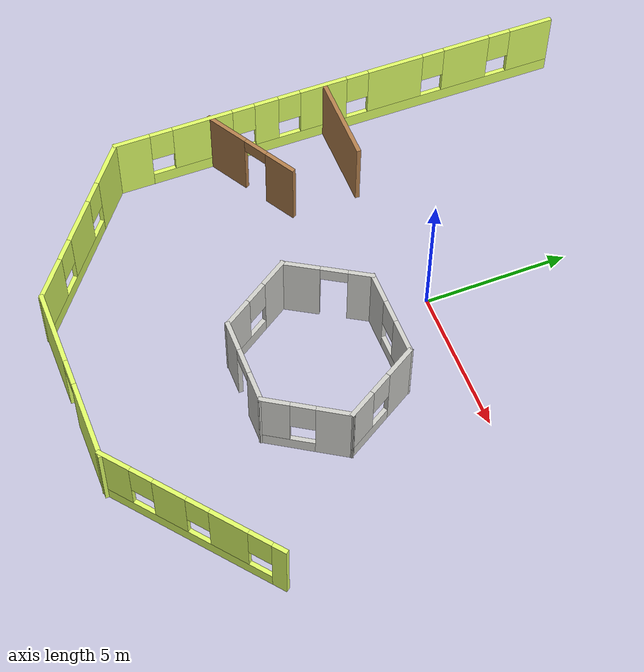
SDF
<sdf version="1.6">
 <model name="myBuilding">
  <pose>-0.015237 -2.0117 0 0 -0 0</pose>
  <link name="Wall_1">
   <pose>-7.98476 2.0117 0 0 -0 1.5708</pose>
   <visual name="Wall_1_Visual_0">
    <pose>-7.43035 0 1.25 0 -0 0</pose>
    <geometry><box><size>1.2893 0.15 2.5</size></box></geometry>
    <material>
     <script><uri>file://media/materials/scripts/gazebo.material</uri><name>Gazebo/Grey</name></script>
     <ambient>0.870588 1 0.4 1</ambient>
    </material>
    <meta><layer>0</layer></meta>
   </visual>
   <collision name="Wall_1_Collision_0">
    <geometry><box><size>1.2893 0.15 2.5</size></box></geometry>
    <pose>-7.43035 0 1.25 0 -0 0</pose>
   </collision>
   <visual name="Wall_1_Visual_1">
    <pose>0.64465 0 0.25 0 -0 0</pose>
    <geometry><box><size>14.8607 0.15 0.5</size></box></geometry>
    <material>
     <script><uri>file://media/materials/scripts/gazebo.material</uri><name>Gazebo/Grey</name></script>
     <ambient>0.870588 1 0.4 1</ambient>
    </material>
    <meta><layer>0</layer></meta>
   </visual>
   <collision name="Wall_1_Collision_1">
    <geometry><box><size>14.8607 0.15 0.5</size></box></geometry>
    <pose>0.64465 0 0.25 0 -0 0</pose>
   </collision>
   <visual name="Wall_1_Visual_2">
    <pose>-4.91735 0 1.5 0 -0 0</pose>
    <geometry><box><size>2.13671 0.15 2</size></box></geometry>
    <material>
     <script><uri>file://media/materials/scripts/gazebo.material</uri><name>Gazebo/Grey</name></script>
     <ambient>0.870588 1 0.4 1</ambient>
    </material>
    <meta><layer>0</layer></meta>
   </visual>
   <collision name="Wall_1_Collision_2">
    <geometry><box><size>2.13671 0.15 2</size></box></geometry>
    <pose>-4.91735 0 1.5 0 -0 0</pose>
   </collision>
   <visual name="Wall_1_Visual_3">
    <pose>-2.61971 0 1.5 0 -0 0</pose>
    <geometry><box><size>0.858577 0.15 2</size></box></geometry>
    <material>
     <script><uri>file://media/materials/scripts/gazebo.material</uri><name>Gazebo/Grey</name></script>
     <ambient>0.870588 1 0.4 1</ambient>
    </material>
    <meta><layer>0</layer></meta>
   </visual>
   <collision name="Wall_1_Collision_3">
    <geometry><box><size>0.858577 0.15 2</size></box></geometry>
    <pose>-2.61971 0 1.5 0 -0 0</pose>
   </collision>
   <visual name="Wall_1_Visual_4">
    <pose>-0.533107 0 1.5 0 -0 0</pose>
    <geometry><box><size>1.71462 0.15 2</size></box></geometry>
    <material>
     <script><uri>file://media/materials/scripts/gazebo.material</uri><name>Gazebo/Grey</name></script>
     <ambient>0.870588 1 0.4 1</ambient>
    </material>
    <meta><layer>0</layer></meta>
   </visual>
   <collision name="Wall_1_Collision_4">
    <geometry><box><size>1.71462 0.15 2</size></box></geometry>
    <pose>-0.533107 0 1.5 0 -0 0</pose>
   </collision>
   <visual name="Wall_1_Visual_5">
    <pose>2.14202 0 1.5 0 -0 0</pose>
    <geometry><box><size>2.03563 0.15 2</size></box></geometry>
    <material>
     <script><uri>file://media/materials/scripts/gazebo.material</uri><name>Gazebo/Grey</name></script>
     <ambient>0.870588 1 0.4 1</ambient>
    </material>
    <meta><layer>0</layer></meta>
   </visual>
   <collision name="Wall_1_Collision_5">
    <geometry><box><size>2.03563 0.15 2</size></box></geometry>
    <pose>2.14202 0 1.5 0 -0 0</pose>
   </collision>
   <visual name="Wall_1_Visual_6">
    <pose>4.81656 0 1.5 0 -0 0</pose>
    <geometry><box><size>1.71345 0.15 2</size></box></geometry>
    <material>
     <script><uri>file://media/materials/scripts/gazebo.material</uri><name>Gazebo/Grey</name></script>
     <ambient>0.870588 1 0.4 1</ambient>
    </material>
    <meta><layer>0</layer></meta>
   </visual>
   <collision name="Wall_1_Collision_6">
    <geometry><box><size>1.71345 0.15 2</size></box></geometry>
    <pose>4.81656 0 1.5 0 -0 0</pose>
   </collision>
   <visual name="Wall_1_Visual_7">
    <pose>7.27414 0 1.5 0 -0 0</pose>
    <geometry><box><size>1.60171 0.15 2</size></box></geometry>
    <material>
     <script><uri>file://media/materials/scripts/gazebo.material</uri><name>Gazebo/Grey</name></script>
     <ambient>0.870588 1 0.4 1</ambient>
    </material>
    <meta><layer>0</layer></meta>
   </visual>
   <collision name="Wall_1_Collision_7">
    <geometry><box><size>1.60171 0.15 2</size></box></geometry>
    <pose>7.27414 0 1.5 0 -0 0</pose>
   </collision>
   <visual name="Wall_1_Visual_8">
    <pose>-6.3857 0 1.9 0 -0 0</pose>
    <geometry><box><size>0.8 0.15 1.2</size></box></geometry>
    <material>
     <script><uri>file://media/materials/scripts/gazebo.material</uri><name>Gazebo/Grey</name></script>
     <ambient>0.870588 1 0.4 1</ambient>
    </material>
    <meta><layer>0</layer></meta>
   </visual>
   <collision name="Wall_1_Collision_8">
    <geometry><box><size>0.8 0.15 1.2</size></box></geometry>
    <pose>-6.3857 0 1.9 0 -0 0</pose>
   </collision>
   <visual name="Wall_1_Visual_9">
    <pose>-3.44899 0 1.9 0 -0 0</pose>
    <geometry><box><size>0.8 0.15 1.2</size></box></geometry>
    <material>
     <script><uri>file://media/materials/scripts/gazebo.material</uri><name>Gazebo/Grey</name></script>
     <ambient>0.870588 1 0.4 1</ambient>
    </material>
    <meta><layer>0</layer></meta>
   </visual>
   <collision name="Wall_1_Collision_9">
    <geometry><box><size>0.8 0.15 1.2</size></box></geometry>
    <pose>-3.44899 0 1.9 0 -0 0</pose>
   </collision>
   <visual name="Wall_1_Visual_10">
    <pose>-1.79042 0 1.9 0 -0 0</pose>
    <geometry><box><size>0.8 0.15 1.2</size></box></geometry>
    <material>
     <script><uri>file://media/materials/scripts/gazebo.material</uri><name>Gazebo/Grey</name></script>
     <ambient>0.870588 1 0.4 1</ambient>
    </material>
    <meta><layer>0</layer></meta>
   </visual>
   <collision name="Wall_1_Collision_10">
    <geometry><box><size>0.8 0.15 1.2</size></box></geometry>
    <pose>-1.79042 0 1.9 0 -0 0</pose>
   </collision>
   <visual name="Wall_1_Visual_11">
    <pose>0.724202 0 1.9 0 -0 0</pose>
    <geometry><box><size>0.8 0.15 1.2</size></box></geometry>
    <material>
     <script><uri>file://media/materials/scripts/gazebo.material</uri><name>Gazebo/Grey</name></script>
     <ambient>0.870588 1 0.4 1</ambient>
    </material>
    <meta><layer>0</layer></meta>
   </visual>
   <collision name="Wall_1_Collision_11">
    <geometry><box><size>0.8 0.15 1.2</size></box></geometry>
    <pose>0.724202 0 1.9 0 -0 0</pose>
   </collision>
   <visual name="Wall_1_Visual_12">
    <pose>3.55983 0 1.9 0 -0 0</pose>
    <geometry><box><size>0.8 0.15 1.2</size></box></geometry>
    <material>
     <script><uri>file://media/materials/scripts/gazebo.material</uri><name>Gazebo/Grey</name></script>
     <ambient>0.870588 1 0.4 1</ambient>
    </material>
    <meta><layer>0</layer></meta>
   </visual>
   <collision name="Wall_1_Collision_12">
    <geometry><box><size>0.8 0.15 1.2</size></box></geometry>
    <pose>3.55983 0 1.9 0 -0 0</pose>
   </collision>
   <visual name="Wall_1_Visual_13">
    <pose>6.07329 0 1.9 0 -0 0</pose>
    <geometry><box><size>0.8 0.15 1.2</size></box></geometry>
    <material>
     <script><uri>file://media/materials/scripts/gazebo.material</uri><name>Gazebo/Grey</name></script>
     <ambient>0.870588 1 0.4 1</ambient>
    </material>
    <meta><layer>0</layer></meta>
   </visual>
   <collision name="Wall_1_Collision_13">
    <geometry><box><size>0.8 0.15 1.2</size></box></geometry>
    <pose>6.07329 0 1.9 0 -0 0</pose>
   </collision>
  </link>
  <link name="Wall_10">
   <pose>5.51524 -7.9883 0 0 0 -2.46685</pose>
   <visual name="Wall_10_Visual_0">
    <pose>-3.02719 0 1.25 0 -0 0</pose>
    <geometry><box><size>0.498745 0.15 2.5</size></box></geometry>
    <material>
     <script><uri>file://media/materials/scripts/gazebo.material</uri><name>Gazebo/Grey</name></script>
     <ambient>0.870588 1 0.4 1</ambient>
    </material>
    <meta><layer>0</layer></meta>
   </visual>
   <collision name="Wall_10_Collision_0">
    <geometry><box><size>0.498745 0.15 2.5</size></box></geometry>
    <pose>-3.02719 0 1.25 0 -0 0</pose>
   </collision>
   <visual name="Wall_10_Visual_1">
    <pose>0.249372 0 0.25 0 -0 0</pose>
    <geometry><box><size>6.05438 0.15 0.5</size></box></geometry>
    <material>
     <script><uri>file://media/materials/scripts/gazebo.material</uri><name>Gazebo/Grey</name></script>
     <ambient>0.870588 1 0.4 1</ambient>
    </material>
    <meta><layer>0</layer></meta>
   </visual>
   <collision name="Wall_10_Collision_1">
    <geometry><box><size>6.05438 0.15 0.5</size></box></geometry>
    <pose>0.249372 0 0.25 0 -0 0</pose>
   </collision>
   <visual name="Wall_10_Visual_2">
    <pose>-1.31246 0 1.5 0 -0 0</pose>
    <geometry><box><size>1.33072 0.15 2</size></box></geometry>
    <material>
     <script><uri>file://media/materials/scripts/gazebo.material</uri><name>Gazebo/Grey</name></script>
     <ambient>0.870588 1 0.4 1</ambient>
    </material>
    <meta><layer>0</layer></meta>
   </visual>
   <collision name="Wall_10_Collision_2">
    <geometry><box><size>1.33072 0.15 2</size></box></geometry>
    <pose>-1.31246 0 1.5 0 -0 0</pose>
   </collision>
   <visual name="Wall_10_Visual_3">
    <pose>0.732264 0 1.5 0 -0 0</pose>
    <geometry><box><size>1.15873 0.15 2</size></box></geometry>
    <material>
     <script><uri>file://media/materials/scripts/gazebo.material</uri><name>Gazebo/Grey</name></script>
     <ambient>0.870588 1 0.4 1</ambient>
    </material>
    <meta><layer>0</layer></meta>
   </visual>
   <collision name="Wall_10_Collision_3">
    <geometry><box><size>1.15873 0.15 2</size></box></geometry>
    <pose>0.732264 0 1.5 0 -0 0</pose>
   </collision>
   <visual name="Wall_10_Visual_4">
    <pose>2.6941 0 1.5 0 -0 0</pose>
    <geometry><box><size>1.16493 0.15 2</size></box></geometry>
    <material>
     <script><uri>file://media/materials/scripts/gazebo.material</uri><name>Gazebo/Grey</name></script>
     <ambient>0.870588 1 0.4 1</ambient>
    </material>
    <meta><layer>0</layer></meta>
   </visual>
   <collision name="Wall_10_Collision_4">
    <geometry><box><size>1.16493 0.15 2</size></box></geometry>
    <pose>2.6941 0 1.5 0 -0 0</pose>
   </collision>
   <visual name="Wall_10_Visual_5">
    <pose>-2.37782 0 1.9 0 -0 0</pose>
    <geometry><box><size>0.8 0.15 1.2</size></box></geometry>
    <material>
     <script><uri>file://media/materials/scripts/gazebo.material</uri><name>Gazebo/Grey</name></script>
     <ambient>0.870588 1 0.4 1</ambient>
    </material>
    <meta><layer>0</layer></meta>
   </visual>
   <collision name="Wall_10_Collision_5">
    <geometry><box><size>0.8 0.15 1.2</size></box></geometry>
    <pose>-2.37782 0 1.9 0 -0 0</pose>
   </collision>
   <visual name="Wall_10_Visual_6">
    <pose>-0.247101 0 1.9 0 -0 0</pose>
    <geometry><box><size>0.8 0.15 1.2</size></box></geometry>
    <material>
     <script><uri>file://media/materials/scripts/gazebo.material</uri><name>Gazebo/Grey</name></script>
     <ambient>0.870588 1 0.4 1</ambient>
    </material>
    <meta><layer>0</layer></meta>
   </visual>
   <collision name="Wall_10_Collision_6">
    <geometry><box><size>0.8 0.15 1.2</size></box></geometry>
    <pose>-0.247101 0 1.9 0 -0 0</pose>
   </collision>
   <visual name="Wall_10_Visual_7">
    <pose>1.71163 0 1.9 0 -0 0</pose>
    <geometry><box><size>0.8 0.15 1.2</size></box></geometry>
    <material>
     <script><uri>file://media/materials/scripts/gazebo.material</uri><name>Gazebo/Grey</name></script>
     <ambient>0.870588 1 0.4 1</ambient>
    </material>
    <meta><layer>0</layer></meta>
   </visual>
   <collision name="Wall_10_Collision_7">
    <geometry><box><size>0.8 0.15 1.2</size></box></geometry>
    <pose>1.71163 0 1.9 0 -0 0</pose>
   </collision>
  </link>
  <link name="Wall_12">
   <pose>0.065237 -9.9883 0 0 -0 0</pose>
   <visual name="Wall_12_Visual_0">
    <pose>-1.8125 0 1.25 0 -0 0</pose>
    <geometry><box><size>2.625 0.15 2.5</size></box></geometry>
    <material>
     <script><uri>file://media/materials/scripts/gazebo.material</uri><name>Gazebo/Grey</name></script>
     <ambient>0.870588 1 0.4 1</ambient>
    </material>
    <meta><layer>0</layer></meta>
   </visual>
   <collision name="Wall_12_Collision_0">
    <geometry><box><size>2.625 0.15 2.5</size></box></geometry>
    <pose>-1.8125 0 1.25 0 -0 0</pose>
   </collision>
   <visual name="Wall_12_Visual_1">
    <pose>1.7625 0 1.25 0 -0 0</pose>
    <geometry><box><size>2.725 0.15 2.5</size></box></geometry>
    <material>
     <script><uri>file://media/materials/scripts/gazebo.material</uri><name>Gazebo/Grey</name></script>
     <ambient>0.870588 1 0.4 1</ambient>
    </material>
    <meta><layer>0</layer></meta>
   </visual>
   <collision name="Wall_12_Collision_1">
    <geometry><box><size>2.725 0.15 2.5</size></box></geometry>
    <pose>1.7625 0 1.25 0 -0 0</pose>
   </collision>
   <visual name="Wall_12_Visual_2">
    <pose>-0.05 0 2.25 0 -0 0</pose>
    <geometry><box><size>0.9 0.15 0.5</size></box></geometry>
    <material>
     <script><uri>file://media/materials/scripts/gazebo.material</uri><name>Gazebo/Grey</name></script>
     <ambient>0.870588 1 0.4 1</ambient>
    </material>
    <meta><layer>0</layer></meta>
   </visual>
   <collision name="Wall_12_Collision_2">
    <geometry><box><size>0.9 0.15 0.5</size></box></geometry>
    <pose>-0.05 0 2.25 0 -0 0</pose>
   </collision>
  </link>
  <link name="Wall_22">
   <pose>-6.45936 -1.73129 0 0 0 -2.61799</pose>
   <visual name="Wall_22_Visual_0">
    <pose>-1.28514 0 1.25 0 -0 0</pose>
    <geometry><box><size>1.17972 0.15 2.5</size></box></geometry>
    <material>
     <script><uri>file://media/materials/scripts/gazebo.material</uri><name>Gazebo/Wood</name></script>
     <ambient>1 0.976471 0.866667 1</ambient>
    </material>
    <meta><layer>0</layer></meta>
   </visual>
   <collision name="Wall_22_Collision_0">
    <geometry><box><size>1.17972 0.15 2.5</size></box></geometry>
    <pose>-1.28514 0 1.25 0 -0 0</pose>
   </collision>
   <visual name="Wall_22_Visual_1">
    <pose>1.03986 0 1.25 0 -0 0</pose>
    <geometry><box><size>1.67028 0.15 2.5</size></box></geometry>
    <material>
     <script><uri>file://media/materials/scripts/gazebo.material</uri><name>Gazebo/Wood</name></script>
     <ambient>1 0.976471 0.866667 1</ambient>
    </material>
    <meta><layer>0</layer></meta>
   </visual>
   <collision name="Wall_22_Collision_1">
    <geometry><box><size>1.67028 0.15 2.5</size></box></geometry>
    <pose>1.03986 0 1.25 0 -0 0</pose>
   </collision>
   <visual name="Wall_22_Visual_2">
    <pose>-0.24528 0 2.25 0 -0 0</pose>
    <geometry><box><size>0.9 0.15 0.5</size></box></geometry>
    <material>
     <script><uri>file://media/materials/scripts/gazebo.material</uri><name>Gazebo/Wood</name></script>
     <ambient>1 0.976471 0.866667 1</ambient>
    </material>
    <meta><layer>0</layer></meta>
   </visual>
   <collision name="Wall_22_Collision_2">
    <geometry><box><size>0.9 0.15 0.5</size></box></geometry>
    <pose>-0.24528 0 2.25 0 -0 0</pose>
   </collision>
  </link>
  <link name="Wall_35">
   <collision name="Wall_35_Collision">
    <geometry><box><size>3.22684 0.15 2.5</size></box></geometry>
    <pose>0 0 1.25 0 -0 0</pose>
   </collision>
   <visual name="Wall_35_Visual">
    <pose>0 0 1.25 0 -0 0</pose>
    <geometry><box><size>3.22684 0.15 2.5</size></box></geometry>
    <material>
     <script><uri>file://media/materials/scripts/gazebo.material</uri><name>Gazebo/Wood</name></script>
     <ambient>1 0.976471 0.866667 1</ambient>
    </material>
    <meta><layer>0</layer></meta>
   </visual>
   <pose>-6.44626 1.5187 0 0 -0 0</pose>
  </link>
  <link name="Wall_37">
   <pose>1.51524 0.011703 0 0 -0 0</pose>
   <visual name="Wall_37_Visual_0">
    <pose>-1.00885 0 1.25 0 -0 0</pose>
    <geometry><box><size>1.1323 0.15 2.5</size></box></geometry>
    <material>
     <script><uri>file://media/materials/scripts/gazebo.material</uri><name>Gazebo/CeilingTiled</name></script>
     <ambient>0.662745 0.929412 1 1</ambient>
    </material>
    <meta><layer>0</layer></meta>
   </visual>
   <collision name="Wall_37_Collision_0">
    <geometry><box><size>1.1323 0.15 2.5</size></box></geometry>
    <pose>-1.00885 0 1.25 0 -0 0</pose>
   </collision>
   <visual name="Wall_37_Visual_1">
    <pose>0.566152 0 0.25 0 -0 0</pose>
    <geometry><box><size>2.0177 0.15 0.5</size></box></geometry>
    <material>
     <script><uri>file://media/materials/scripts/gazebo.material</uri><name>Gazebo/CeilingTiled</name></script>
     <ambient>0.662745 0.929412 1 1</ambient>
    </material>
    <meta><layer>0</layer></meta>
   </visual>
   <collision name="Wall_37_Collision_1">
    <geometry><box><size>2.0177 0.15 0.5</size></box></geometry>
    <pose>0.566152 0 0.25 0 -0 0</pose>
   </collision>
   <visual name="Wall_37_Visual_2">
    <pose>0.966152 0 1.5 0 -0 0</pose>
    <geometry><box><size>1.2177 0.15 2</size></box></geometry>
    <material>
     <script><uri>file://media/materials/scripts/gazebo.material</uri><name>Gazebo/CeilingTiled</name></script>
     <ambient>0.662745 0.929412 1 1</ambient>
    </material>
    <meta><layer>0</layer></meta>
   </visual>
   <collision name="Wall_37_Collision_2">
    <geometry><box><size>1.2177 0.15 2</size></box></geometry>
    <pose>0.966152 0 1.5 0 -0 0</pose>
   </collision>
   <visual name="Wall_37_Visual_3">
    <pose>-0.042697 0 1.9 0 -0 0</pose>
    <geometry><box><size>0.8 0.15 1.2</size></box></geometry>
    <material>
     <script><uri>file://media/materials/scripts/gazebo.material</uri><name>Gazebo/CeilingTiled</name></script>
     <ambient>0.662745 0.929412 1 1</ambient>
    </material>
    <meta><layer>0</layer></meta>
   </visual>
   <collision name="Wall_37_Collision_3">
    <geometry><box><size>0.8 0.15 1.2</size></box></geometry>
    <pose>-0.042697 0 1.9 0 -0 0</pose>
   </collision>
  </link>
  <link name="Wall_41">
   <pose>1.55274 -4.8883 0 0 -0 3.14159</pose>
   <visual name="Wall_41_Visual_0">
    <pose>-0.993879 0 1.25 0 -0 0</pose>
    <geometry><box><size>1.08724 0.15 2.5</size></box></geometry>
    <material>
     <script><uri>file://media/materials/scripts/gazebo.material</uri><name>Gazebo/CeilingTiled</name></script>
     <ambient>0.662745 0.929412 1 1</ambient>
    </material>
    <meta><layer>0</layer></meta>
   </visual>
   <collision name="Wall_41_Collision_0">
    <geometry><box><size>1.08724 0.15 2.5</size></box></geometry>
    <pose>-0.993879 0 1.25 0 -0 0</pose>
   </collision>
   <visual name="Wall_41_Visual_1">
    <pose>0.993621 0 1.25 0 -0 0</pose>
    <geometry><box><size>1.08776 0.15 2.5</size></box></geometry>
    <material>
     <script><uri>file://media/materials/scripts/gazebo.material</uri><name>Gazebo/CeilingTiled</name></script>
     <ambient>0.662745 0.929412 1 1</ambient>
    </material>
    <meta><layer>0</layer></meta>
   </visual>
   <collision name="Wall_41_Collision_1">
    <geometry><box><size>1.08776 0.15 2.5</size></box></geometry>
    <pose>0.993621 0 1.25 0 -0 0</pose>
   </collision>
   <visual name="Wall_41_Visual_2">
    <pose>-0.000257 0 2.25 0 -0 0</pose>
    <geometry><box><size>0.9 0.15 0.5</size></box></geometry>
    <material>
     <script><uri>file://media/materials/scripts/gazebo.material</uri><name>Gazebo/CeilingTiled</name></script>
     <ambient>0.662745 0.929412 1 1</ambient>
    </material>
    <meta><layer>0</layer></meta>
   </visual>
   <collision name="Wall_41_Collision_2">
    <geometry><box><size>0.9 0.15 0.5</size></box></geometry>
    <pose>-0.000257 0 2.25 0 -0 0</pose>
   </collision>
  </link>
  <link name="Wall_46">
   <pose>-0.734763 -1.2383 0 0 0 -2.11122</pose>
   <visual name="Wall_46_Visual_0">
    <pose>-1.10227 0 1.25 0 -0 0</pose>
    <geometry><box><size>0.860943 0.15 2.5</size></box></geometry>
    <material>
     <script><uri>file://media/materials/scripts/gazebo.material</uri><name>Gazebo/CeilingTiled</name></script>
     <ambient>0.662745 0.929412 1 1</ambient>
    </material>
    <meta><layer>0</layer></meta>
   </visual>
   <collision name="Wall_46_Collision_0">
    <geometry><box><size>0.860943 0.15 2.5</size></box></geometry>
    <pose>-1.10227 0 1.25 0 -0 0</pose>
   </collision>
   <visual name="Wall_46_Visual_1">
    <pose>0.880472 0 1.25 0 -0 0</pose>
    <geometry><box><size>1.30453 0.15 2.5</size></box></geometry>
    <material>
     <script><uri>file://media/materials/scripts/gazebo.material</uri><name>Gazebo/CeilingTiled</name></script>
     <ambient>0.662745 0.929412 1 1</ambient>
    </material>
    <meta><layer>0</layer></meta>
   </visual>
   <collision name="Wall_46_Collision_1">
    <geometry><box><size>1.30453 0.15 2.5</size></box></geometry>
    <pose>0.880472 0 1.25 0 -0 0</pose>
   </collision>
   <visual name="Wall_46_Visual_2">
    <pose>-0.221794 0 2.25 0 -0 0</pose>
    <geometry><box><size>0.9 0.15 0.5</size></box></geometry>
    <material>
     <script><uri>file://media/materials/scripts/gazebo.material</uri><name>Gazebo/CeilingTiled</name></script>
     <ambient>0.662745 0.929412 1 1</ambient>
    </material>
    <meta><layer>0</layer></meta>
   </visual>
   <collision name="Wall_46_Collision_2">
    <geometry><box><size>0.9 0.15 0.5</size></box></geometry>
    <pose>-0.221794 0 2.25 0 -0 0</pose>
   </collision>
  </link>
  <link name="Wall_47">
   <pose>-0.697263 -3.6883 0 0 0 -0.99004</pose>
   <visual name="Wall_47_Visual_0">
    <pose>-0.962388 0 1.25 0 -0 0</pose>
    <geometry><box><size>1.09587 0.15 2.5</size></box></geometry>
    <material>
     <script><uri>file://media/materials/scripts/gazebo.material</uri><name>Gazebo/CeilingTiled</name></script>
     <ambient>0.662745 0.929412 1 1</ambient>
    </material>
    <meta><layer>0</layer></meta>
   </visual>
   <collision name="Wall_47_Collision_0">
    <geometry><box><size>1.09587 0.15 2.5</size></box></geometry>
    <pose>-0.962388 0 1.25 0 -0 0</pose>
   </collision>
   <visual name="Wall_47_Visual_1">
    <pose>0.547936 0 0.25 0 -0 0</pose>
    <geometry><box><size>1.92478 0.15 0.5</size></box></geometry>
    <material>
     <script><uri>file://media/materials/scripts/gazebo.material</uri><name>Gazebo/CeilingTiled</name></script>
     <ambient>0.662745 0.929412 1 1</ambient>
    </material>
    <meta><layer>0</layer></meta>
   </visual>
   <collision name="Wall_47_Collision_1">
    <geometry><box><size>1.92478 0.15 0.5</size></box></geometry>
    <pose>0.547936 0 0.25 0 -0 0</pose>
   </collision>
   <visual name="Wall_47_Visual_2">
    <pose>0.947936 0 1.5 0 -0 0</pose>
    <geometry><box><size>1.12478 0.15 2</size></box></geometry>
    <material>
     <script><uri>file://media/materials/scripts/gazebo.material</uri><name>Gazebo/CeilingTiled</name></script>
     <ambient>0.662745 0.929412 1 1</ambient>
    </material>
    <meta><layer>0</layer></meta>
   </visual>
   <collision name="Wall_47_Collision_2">
    <geometry><box><size>1.12478 0.15 2</size></box></geometry>
    <pose>0.947936 0 1.5 0 -0 0</pose>
   </collision>
   <visual name="Wall_47_Visual_3">
    <pose>-0.014452 0 1.9 0 -0 0</pose>
    <geometry><box><size>0.8 0.15 1.2</size></box></geometry>
    <material>
     <script><uri>file://media/materials/scripts/gazebo.material</uri><name>Gazebo/CeilingTiled</name></script>
     <ambient>0.662745 0.929412 1 1</ambient>
    </material>
    <meta><layer>0</layer></meta>
   </visual>
   <collision name="Wall_47_Collision_3">
    <geometry><box><size>0.8 0.15 1.2</size></box></geometry>
    <pose>-0.014452 0 1.9 0 -0 0</pose>
   </collision>
  </link>
  <link name="Wall_49">
   <pose>3.76524 -1.2383 0 0 0 -1.03038</pose>
   <visual name="Wall_49_Visual_0">
    <pose>-0.922396 0 1.25 0 -0 0</pose>
    <geometry><box><size>1.22069 0.15 2.5</size></box></geometry>
    <material>
     <script><uri>file://media/materials/scripts/gazebo.material</uri><name>Gazebo/CeilingTiled</name></script>
     <ambient>0.662745 0.929412 1 1</ambient>
    </material>
    <meta><layer>0</layer></meta>
   </visual>
   <collision name="Wall_49_Collision_0">
    <geometry><box><size>1.22069 0.15 2.5</size></box></geometry>
    <pose>-0.922396 0 1.25 0 -0 0</pose>
   </collision>
   <visual name="Wall_49_Visual_1">
    <pose>0.610342 0 0.25 0 -0 0</pose>
    <geometry><box><size>1.84479 0.15 0.5</size></box></geometry>
    <material>
     <script><uri>file://media/materials/scripts/gazebo.material</uri><name>Gazebo/CeilingTiled</name></script>
     <ambient>0.662745 0.929412 1 1</ambient>
    </material>
    <meta><layer>0</layer></meta>
   </visual>
   <collision name="Wall_49_Collision_1">
    <geometry><box><size>1.84479 0.15 0.5</size></box></geometry>
    <pose>0.610342 0 0.25 0 -0 0</pose>
   </collision>
   <visual name="Wall_49_Visual_2">
    <pose>1.01034 0 1.5 0 -0 0</pose>
    <geometry><box><size>1.04479 0.15 2</size></box></geometry>
    <material>
     <script><uri>file://media/materials/scripts/gazebo.material</uri><name>Gazebo/CeilingTiled</name></script>
     <ambient>0.662745 0.929412 1 1</ambient>
    </material>
    <meta><layer>0</layer></meta>
   </visual>
   <collision name="Wall_49_Collision_2">
    <geometry><box><size>1.04479 0.15 2</size></box></geometry>
    <pose>1.01034 0 1.5 0 -0 0</pose>
   </collision>
   <visual name="Wall_49_Visual_3">
    <pose>0.087947 0 1.9 0 -0 0</pose>
    <geometry><box><size>0.8 0.15 1.2</size></box></geometry>
    <material>
     <script><uri>file://media/materials/scripts/gazebo.material</uri><name>Gazebo/CeilingTiled</name></script>
     <ambient>0.662745 0.929412 1 1</ambient>
    </material>
    <meta><layer>0</layer></meta>
   </visual>
   <collision name="Wall_49_Collision_3">
    <geometry><box><size>0.8 0.15 1.2</size></box></geometry>
    <pose>0.087947 0 1.9 0 -0 0</pose>
   </collision>
  </link>
  <link name="Wall_50">
   <pose>3.76524 -3.6883 0 0 0 -2.1294</pose>
   <visual name="Wall_50_Visual_0">
    <pose>-0.889397 0 1.25 0 -0 0</pose>
    <geometry><box><size>1.2014 0.15 2.5</size></box></geometry>
    <material>
     <script><uri>file://media/materials/scripts/gazebo.material</uri><name>Gazebo/CeilingTiled</name></script>
     <ambient>0.662745 0.929412 1 1</ambient>
    </material>
    <meta><layer>0</layer></meta>
   </visual>
   <collision name="Wall_50_Collision_0">
    <geometry><box><size>1.2014 0.15 2.5</size></box></geometry>
    <pose>-0.889397 0 1.25 0 -0 0</pose>
   </collision>
   <visual name="Wall_50_Visual_1">
    <pose>0.6007 0 0.25 0 -0 0</pose>
    <geometry><box><size>1.77879 0.15 0.5</size></box></geometry>
    <material>
     <script><uri>file://media/materials/scripts/gazebo.material</uri><name>Gazebo/CeilingTiled</name></script>
     <ambient>0.662745 0.929412 1 1</ambient>
    </material>
    <meta><layer>0</layer></meta>
   </visual>
   <collision name="Wall_50_Collision_1">
    <geometry><box><size>1.77879 0.15 0.5</size></box></geometry>
    <pose>0.6007 0 0.25 0 -0 0</pose>
   </collision>
   <visual name="Wall_50_Visual_2">
    <pose>1.0007 0 1.5 0 -0 0</pose>
    <geometry><box><size>0.978794 0.15 2</size></box></geometry>
    <material>
     <script><uri>file://media/materials/scripts/gazebo.material</uri><name>Gazebo/CeilingTiled</name></script>
     <ambient>0.662745 0.929412 1 1</ambient>
    </material>
    <meta><layer>0</layer></meta>
   </visual>
   <collision name="Wall_50_Collision_2">
    <geometry><box><size>0.978794 0.15 2</size></box></geometry>
    <pose>1.0007 0 1.5 0 -0 0</pose>
   </collision>
   <visual name="Wall_50_Visual_3">
    <pose>0.111303 0 1.9 0 -0 0</pose>
    <geometry><box><size>0.8 0.15 1.2</size></box></geometry>
    <material>
     <script><uri>file://media/materials/scripts/gazebo.material</uri><name>Gazebo/CeilingTiled</name></script>
     <ambient>0.662745 0.929412 1 1</ambient>
    </material>
    <meta><layer>0</layer></meta>
   </visual>
   <collision name="Wall_50_Collision_3">
    <geometry><box><size>0.8 0.15 1.2</size></box></geometry>
    <pose>0.111303 0 1.9 0 -0 0</pose>
   </collision>
  </link>
  <link name="Wall_8">
   <pose>-5.48476 -7.9883 0 0 0 -0.674741</pose>
   <visual name="Wall_8_Visual_0">
    <pose>-2.41045 0 1.25 0 -0 0</pose>
    <geometry><box><size>1.73221 0.15 2.5</size></box></geometry>
    <material>
     <script><uri>file://media/materials/scripts/gazebo.material</uri><name>Gazebo/Grey</name></script>
     <ambient>0.870588 1 0.4 1</ambient>
    </material>
    <meta><layer>0</layer></meta>
   </visual>
   <collision name="Wall_8_Collision_0">
    <geometry><box><size>1.73221 0.15 2.5</size></box></geometry>
    <pose>-2.41045 0 1.25 0 -0 0</pose>
   </collision>
   <visual name="Wall_8_Visual_1">
    <pose>0.866107 0 0.25 0 -0 0</pose>
    <geometry><box><size>4.82091 0.15 0.5</size></box></geometry>
    <material>
     <script><uri>file://media/materials/scripts/gazebo.material</uri><name>Gazebo/Grey</name></script>
     <ambient>0.870588 1 0.4 1</ambient>
    </material>
    <meta><layer>0</layer></meta>
   </visual>
   <collision name="Wall_8_Collision_1">
    <geometry><box><size>4.82091 0.15 0.5</size></box></geometry>
    <pose>0.866107 0 0.25 0 -0 0</pose>
   </collision>
   <visual name="Wall_8_Visual_2">
    <pose>0.073887 0 1.5 0 -0 0</pose>
    <geometry><box><size>1.63647 0.15 2</size></box></geometry>
    <material>
     <script><uri>file://media/materials/scripts/gazebo.material</uri><name>Gazebo/Grey</name></script>
     <ambient>0.870588 1 0.4 1</ambient>
    </material>
    <meta><layer>0</layer></meta>
   </visual>
   <collision name="Wall_8_Collision_2">
    <geometry><box><size>1.63647 0.15 2</size></box></geometry>
    <pose>0.073887 0 1.5 0 -0 0</pose>
   </collision>
   <visual name="Wall_8_Visual_3">
    <pose>2.48434 0 1.5 0 -0 0</pose>
    <geometry><box><size>1.58444 0.15 2</size></box></geometry>
    <material>
     <script><uri>file://media/materials/scripts/gazebo.material</uri><name>Gazebo/Grey</name></script>
     <ambient>0.870588 1 0.4 1</ambient>
    </material>
    <meta><layer>0</layer></meta>
   </visual>
   <collision name="Wall_8_Collision_3">
    <geometry><box><size>1.58444 0.15 2</size></box></geometry>
    <pose>2.48434 0 1.5 0 -0 0</pose>
   </collision>
   <visual name="Wall_8_Visual_4">
    <pose>-1.14435 0 1.9 0 -0 0</pose>
    <geometry><box><size>0.8 0.15 1.2</size></box></geometry>
    <material>
     <script><uri>file://media/materials/scripts/gazebo.material</uri><name>Gazebo/Grey</name></script>
     <ambient>0.870588 1 0.4 1</ambient>
    </material>
    <meta><layer>0</layer></meta>
   </visual>
   <collision name="Wall_8_Collision_4">
    <geometry><box><size>0.8 0.15 1.2</size></box></geometry>
    <pose>-1.14435 0 1.9 0 -0 0</pose>
   </collision>
   <visual name="Wall_8_Visual_5">
    <pose>1.29212 0 1.9 0 -0 0</pose>
    <geometry><box><size>0.8 0.15 1.2</size></box></geometry>
    <material>
     <script><uri>file://media/materials/scripts/gazebo.material</uri><name>Gazebo/Grey</name></script>
     <ambient>0.870588 1 0.4 1</ambient>
    </material>
    <meta><layer>0</layer></meta>
   </visual>
   <collision name="Wall_8_Collision_5">
    <geometry><box><size>0.8 0.15 1.2</size></box></geometry>
    <pose>1.29212 0 1.9 0 -0 0</pose>
   </collision>
  </link>
  <static>1</static>
 </model>
</sdf>
